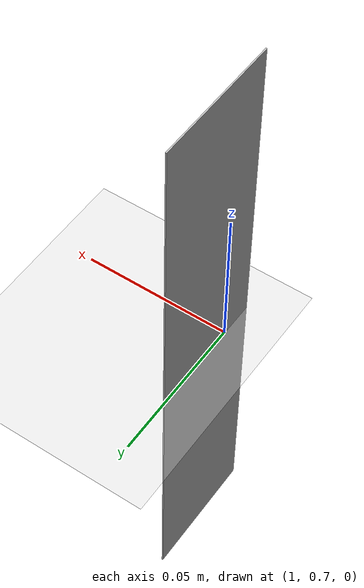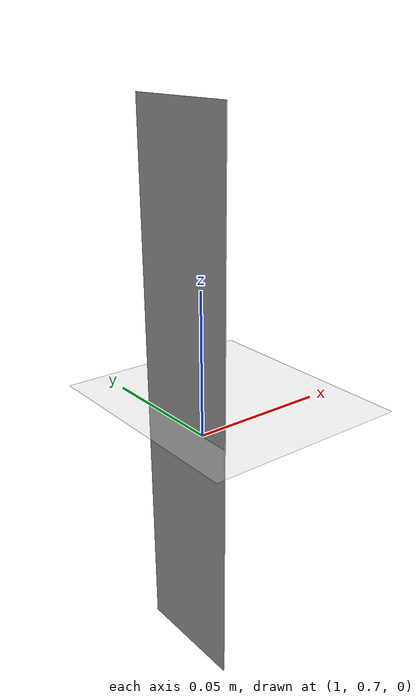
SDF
<?xml version="1.0"?>
<sdf version="1.5">
  <world name="default">
    <scene>
      <ambient>0.4 0.4 0.4 1</ambient>
      <background>0.25 0.25 0.25 1</background>
      <shadows>false</shadows>
    </scene>

    <gui fullscreen='0'>
      <camera name='user_default'>
        <pose frame=''>0.602948 -0.001582 0.357965 -0 0.6 -3.141</pose>
        <view_controller>orbit</view_controller>
        <projection_type>perspective</projection_type>
      </camera>
    </gui>

    <physics type="ode">
      <max_step_size>0.003</max_step_size>
      <real_time_factor>1000</real_time_factor> <!-- the real time update rate should be 0 in order to run as fast as possible-->
      <real_time_update_rate>1000.0</real_time_update_rate>
      <ode>
        <solver>
          <type>quick</type>
          <iters>50</iters>
          <sor>1.4</sor>
        </solver>
        <constraints>
          <cfm>0</cfm>
          <erp>1</erp>
          <contact_max_correcting_vel>0</contact_max_correcting_vel>
          <contact_surface_layer>0</contact_surface_layer>
        </constraints>
      </ode>
    </physics>

    <include>
      <uri>model://ground_plane</uri>
    </include>

    <include>
      <uri>model://sun</uri>
    </include>

    <light type="point" name="point">
      <pose>2 1 3 0 0 0</pose>
      <diffuse>1 1 1 1</diffuse>
      <specular>.1 .1 .1 1</specular>
      <attenuation>
        <range>20</range>
        <linear>0.2</linear>
        <constant>0.8</constant>
        <quadratic>0.01</quadratic>
      </attenuation>
      <cast_shadows>false</cast_shadows>
    </light>

    <light type="point" name="point2">
      <pose>1 1 1.5 0 0 0</pose>
      <diffuse>1 1 1 1</diffuse>
      <specular>.1 .1 .1 1</specular>
      <attenuation>
        <range>20</range>
        <linear>0.2</linear>
        <constant>0.8</constant>
        <quadratic>0.01</quadratic>
      </attenuation>
      <cast_shadows>false</cast_shadows>
    </light>

    <light type="point" name="point3">
      <pose>-1 1 2.0 0 0 0</pose>
      <diffuse>1 1 1 1</diffuse>
      <specular>.1 .1 .1 1</specular>
      <attenuation>
        <range>20</range>
        <linear>0.2</linear>
        <constant>0.8</constant>
        <quadratic>0.01</quadratic>
      </attenuation>
      <cast_shadows>false</cast_shadows>
    </light>

    <model name="marker_1">
      <pose>1.0 0.71 0.005  0 0 3.14</pose>

      <static>true</static>
      <link name="body">
        <visual name="visual">
          <geometry>

            <mesh>
                <uri>model://markers/meshes/marker_1.dae</uri>
		<scale>0.22 0.22 1</scale>
            </mesh>
          </geometry>
        </visual>
      </link>
    </model>

  </world>
</sdf>
